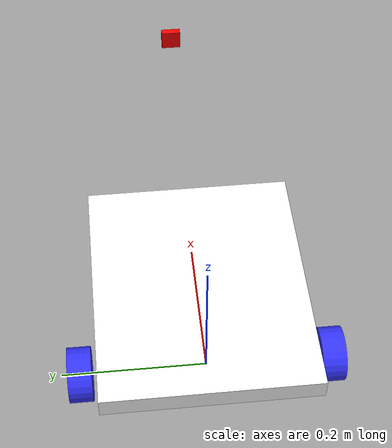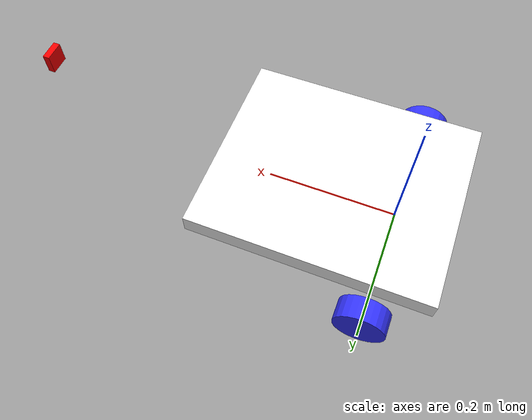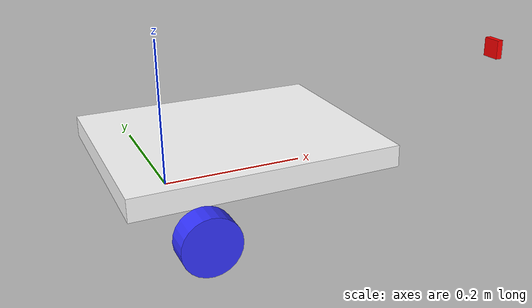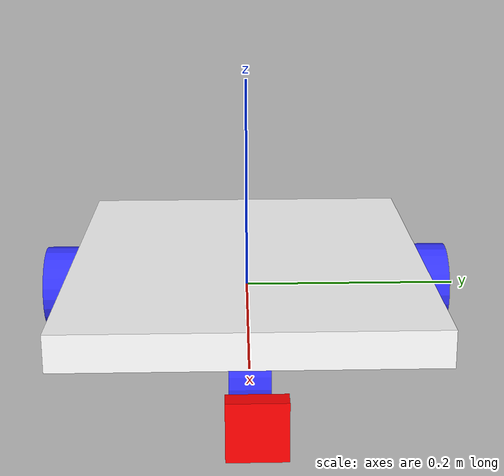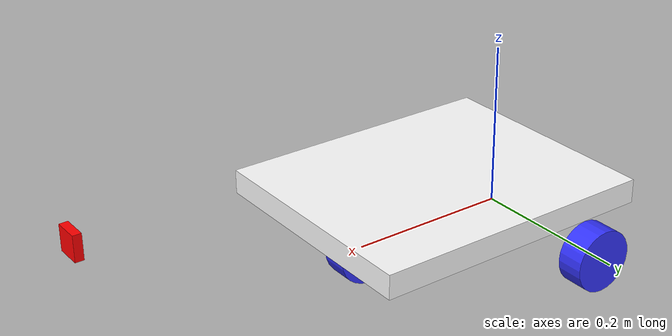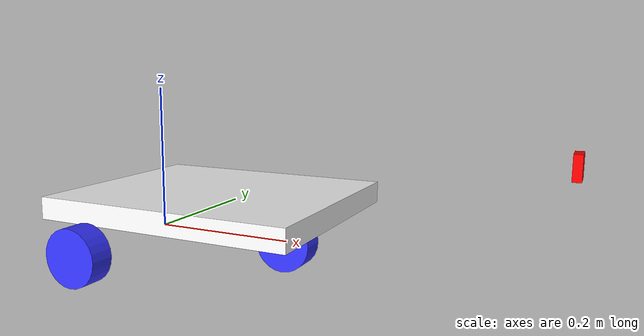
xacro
<?xml version="1.0"?>
<robot xmlns:xacro="http://www.ros.org/wiki/xacro"  name="robot">

    <xacro:arg name="use_ros2_control" default="true"/>

    <xacro:include filename="robot_core.xacro"/>
    <xacro:if value="$(arg use_ros2_control)">
        <xacro:include filename="ros2_control.xacro"/>
    </xacro:if>
    <xacro:unless value="$(arg use_ros2_control)">
        <xacro:include filename="gazebo_control.xacro"/>
    </xacro:unless>
    <xacro:include filename="camera.xacro"/>
    <xacro:include filename="depth_camera.xacro"/>

</robot>

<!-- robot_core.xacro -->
<robot xmlns:xacro="http://www.ros.org/wiki/xacro">

    <xacro:include filename="inertial_macros.xacro"/>

    <xacro:property name="chassis_mass" value="0.7"/>
    <xacro:property name="wheel_radius" value="0.038"/>
    <xacro:property name="wheel_thickness" value="0.033"/>
    <xacro:property name="wheel_mass" value="0.01"/>
    <xacro:property name="chassis_length" value="0.36"/>
    <xacro:property name="chassis_width" value="0.30"/>
    <xacro:property name="chassis_height" value="0.03"/>
    <xacro:property name="chassis_bottom_from_floor" value="0.07"/>
    <!-- base_link stays on the midpoint of the driven rear axle. -->
    <xacro:property name="chassis_center_x" value="0.095"/>
    <xacro:property name="chassis_center_z" value="${chassis_bottom_from_floor + chassis_height/2 - wheel_radius}"/>
    <xacro:property name="rear_wheel_offset_x" value="0.0"/>
    <xacro:property name="wheel_offset_y" value="0.1745"/>
    <xacro:property name="wheel_offset_z" value="0"/>
    <!-- Real camera is mounted on a bracket, shifted forward and raised above the chassis roof. -->
    <xacro:property name="camera_mount_x" value="0.2015"/>
    <xacro:property name="camera_mount_z" value="0.0450"/>
    <xacro:property name="caster_wheel_offset_x" value="${camera_mount_x}"/>

    <material name="white">
        <color rgba="1 1 1 1"/>
    </material>

    <material name="orange">
        <color rgba="1 0.3 0.1 1"/>
    </material>

    <material name="blue">
        <color rgba="0.2 0.2 1 1"/>
    </material>

    <material name="black">
        <color rgba="0 0 0 1"/>
    </material>

    <material name="red">
        <color rgba="1 0 0 1"/>
    </material>

    <!-- BASE LINK -->

    <link name="base_link">

    </link>

    <!-- BASE_FOOTPRINT LINK -->

    <joint name="base_footprint_joint" type="fixed">
        <parent link="base_link"/>
        <child link="base_footprint"/>
        <origin xyz="0 0 -${wheel_radius}" rpy="0 0 0"/>
    </joint>

    <link name="base_footprint">
    </link>

    <!-- CHASSIS LINK -->

    <joint name="chassis_joint" type="fixed">
        <parent link="base_link"/>
        <child link="chassis"/>
        <origin xyz="${chassis_center_x} 0 ${chassis_center_z}"/>
    </joint>

    <link name="chassis">
        <visual>
            <geometry>
                <box size="${chassis_length} ${chassis_width} ${chassis_height}"/>
            </geometry>
            <material name="white"/>
        </visual>
        <collision>
            <geometry>
                <box size="${chassis_length} ${chassis_width} ${chassis_height}"/>
            </geometry>
        </collision>
        <xacro:inertial_box mass="${chassis_mass}" x="${chassis_length}" y="${chassis_width}" z="${chassis_height}">
            <origin xyz="0 0 0" rpy="0 0 0"/>
        </xacro:inertial_box>
    </link>

    <gazebo reference="chassis">
        <material>Gazebo/White</material>
        <transparency>0.0</transparency>
    </gazebo>

    <!-- LEFT WHEEL LINK -->

    <joint name="left_wheel_joint" type = "continuous">
        <parent link="base_link"/>
        <child link="left_wheel"/>
        <origin xyz="${rear_wheel_offset_x} ${wheel_offset_y} 0" rpy="-${pi/2} 0 0"/>
        <axis xyz="0 0 1"/>
        <limit effort="10.0" velocity="10.0"/>
    </joint>

    <link name="left_wheel">
        <visual>
            <geometry>
                <cylinder radius="${wheel_radius}" length="${wheel_thickness}"/>
            </geometry>
            <material name="blue"/>
        </visual>
        <collision>
            <geometry>
                <cylinder radius="${wheel_radius}" length="${wheel_thickness}"/>
            </geometry>
        </collision>
        <xacro:inertial_cylinder mass="${wheel_mass}" length="${wheel_thickness}" radius="${wheel_radius}">
            <origin xyz="0 0 0" rpy="0 0 0"/>
        </xacro:inertial_cylinder>
    </link>

    <gazebo reference="left_wheel">
        <material>Gazebo/Blue</material>
    </gazebo>

    <!-- RIGHT WHEEL LINK -->

    <joint name="right_wheel_joint" type = "continuous">
        <parent link="base_link"/>
        <child link="right_wheel"/>
        <origin xyz="${rear_wheel_offset_x} ${-wheel_offset_y} 0" rpy="${pi/2} 0 0"/>
        <axis xyz="0 0 -1"/>
        <limit effort="10.0" velocity="10.0"/>
    </joint>

    <link name="right_wheel">
        <visual>
            <geometry>
                <cylinder radius="${wheel_radius}" length="${wheel_thickness}"/>
            </geometry>
            <material name="blue"/>
        </visual>
        <collision>
            <geometry>
                <cylinder radius="${wheel_radius}" length="${wheel_thickness}"/>
            </geometry>
        </collision>
        <xacro:inertial_cylinder mass="${wheel_mass}" length="${wheel_thickness}" radius="${wheel_radius}">
            <origin xyz="0 0 0" rpy="0 0 0"/>
        </xacro:inertial_cylinder>
    </link>

    <gazebo reference="right_wheel">
        <material>Gazebo/Blue</material>
    </gazebo>

    <!-- FRONT CENTER CASTER WHEEL LINK -->

    <joint name="caster_wheel_joint" type="fixed">
        <parent link="base_link"/>
        <child link="caster_wheel"/>
        <origin xyz="${caster_wheel_offset_x} 0 0" rpy="-${pi/2} 0 0"/>
    </joint>

    <link name="caster_wheel">
        <visual>
            <geometry>
                <cylinder radius="${wheel_radius}" length="${wheel_thickness}"/>
            </geometry>
            <material name="blue"/>
        </visual>
        <collision>
            <geometry>
                <cylinder radius="${wheel_radius}" length="${wheel_thickness}"/>
            </geometry>
        </collision>
        <xacro:inertial_cylinder mass="${wheel_mass}" length="${wheel_thickness}" radius="${wheel_radius}">
            <origin xyz="0 0 0" rpy="0 0 0"/>
        </xacro:inertial_cylinder>
    </link>

    <gazebo reference="caster_wheel">
        <material>Gazebo/Blue</material>
    </gazebo>
</robot>

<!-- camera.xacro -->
<robot xmlns:xacro="http://www.ros.org/wiki/xacro">

    <joint name="camera_joint" type="fixed">
        <parent link="chassis"/>
        <child link="camera_link"/>
        <origin xyz="0.455 0 0.08" rpy="0 0 0"/>
    </joint>

    <link name="camera_link">
        <visual>
            <geometry>
                <box size="0.01 0.03 0.03"/>
            </geometry>
            <material name="red"/>
        </visual>
    </link>

    <joint name="camera_optical_joint" type="fixed">
        <parent link="camera_link"/>
        <child link="camera_link_optical"/>
        <origin xyz="0 0 0" rpy="${-pi/2} 0 ${-pi/2}"/>
    </joint>

    <link name="camera_link_optical"></link>

    <gazebo reference="camera_link">
        <sensor name="camera" type="camera">
            <pose>0 0 0 0 0 0</pose>
            <always_on>true</always_on>
            <visualize>true</visualize>
            <update_rate>30</update_rate>
            <camera>
                <camera_info_topic>camera/camera/color/camera_info</camera_info_topic>
                <horizontal_fov>1.089</horizontal_fov>
                <image>
                    <format>R8G8B8</format>
                    <width>640</width>
                    <height>480</height>
                </image>
                <clip>
                    <near>0.05</near>
                    <far>8.0</far>
                </clip>
            </camera>
            <topic>camera/camera/color/image_raw</topic>
            <gz_frame_id>camera_link_optical</gz_frame_id>
        </sensor>
        <material>Gazebo/Red</material>
    </gazebo>
</robot>

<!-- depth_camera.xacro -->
<robot xmlns:xacro="http://www.ros.org/wiki/xacro">

    <joint name="depth_camera_joint" type="fixed">
        <parent link="camera_link"/>
        <child link="depth_camera_link"/>
        <origin xyz="0 0 0" rpy="0 0 0"/>
    </joint>

    <link name="depth_camera_link"></link>

    <joint name="depth_camera_optical_joint" type="fixed">
        <parent link="camera_link_optical"/>
        <child link="depth_camera_link_optical"/>
        <origin xyz="0 0 0" rpy="0 0 0"/>
    </joint>

    <link name="depth_camera_link_optical"></link>

    <gazebo reference="camera_link">
        <sensor name="depth_camera" type="depth">
            <pose>0 0 0 0 0 0</pose>
            <always_on>true</always_on>
            <visualize>true</visualize>
            <update_rate>30</update_rate>
            <topic>camera/camera/depth/image_rect_raw</topic>
            <gz_frame_id>camera_link_optical</gz_frame_id>
            <camera>
                <camera_info_topic>camera/camera/depth/camera_info</camera_info_topic>
                <horizontal_fov>1.089</horizontal_fov>
                <image>
                    <width>640</width>
                    <height>480</height>
                </image>
                <depth_camera>
                    <clip>
                        <near>0.05</near>
                        <far>8.0</far>
                    </clip>
                </depth_camera>
            </camera>
        </sensor>
    </gazebo>

</robot>
